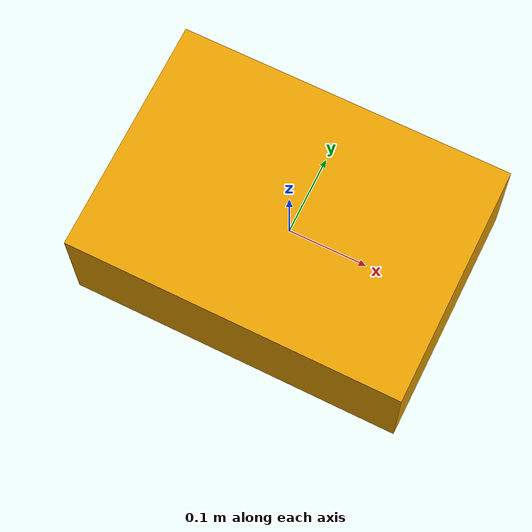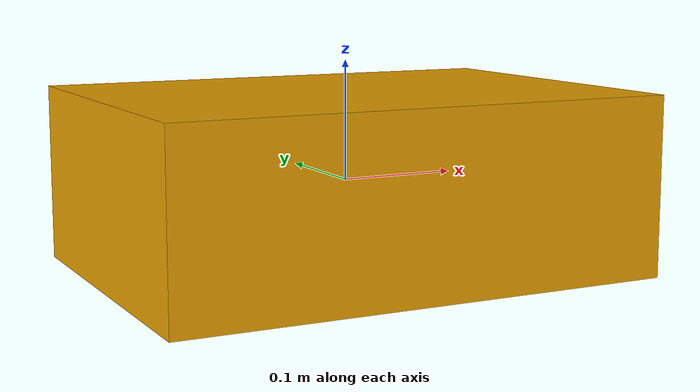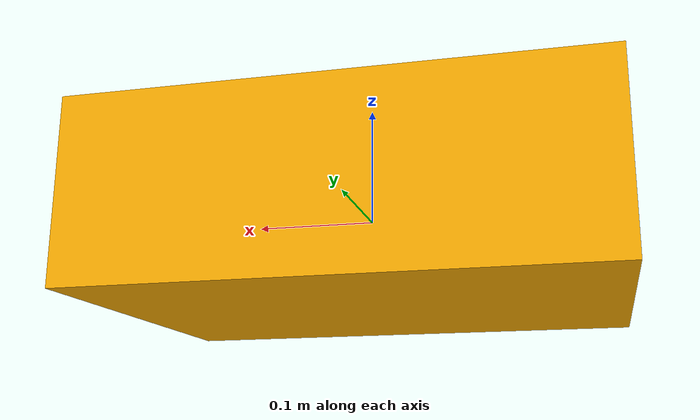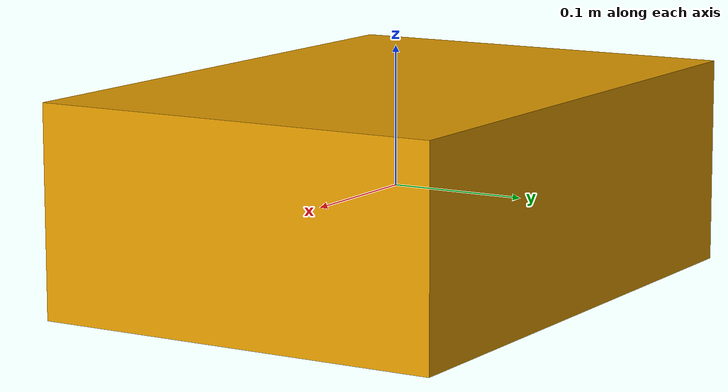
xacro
<?xml version="1.0"?>
<robot xmlns:xacro="http://www.ros.org/wiki/xacro" name="leo_rover_min">
  <link name="base_link">
    <inertial><mass value="6.5"/><origin xyz="0 0 0"/><inertia ixx="0.1" ixy="0" ixz="0" iyy="0.2" iyz="0" izz="0.3"/></inertial>
    <visual><geometry><box size="0.42 0.30 0.15"/></geometry></visual>
    <collision><geometry><box size="0.42 0.30 0.15"/></geometry></collision>
  </link>
  <link name="camera_link"/>
  <joint name="camera_joint" type="fixed">
    <origin xyz="0.15 0.0 0.18" rpy="0 0 0"/>
    <parent link="base_link"/>
    <child link="camera_link"/>
  </joint>
  <link name="camera_optical_frame"/>
  <joint name="camera_optical_joint" type="fixed">
    <origin xyz="0 0 0" rpy="-1.57079632679 0 -1.57079632679"/>
    <parent link="camera_link"/>
    <child link="camera_optical_frame"/>
  </joint>
  <link name="odom"/>
  <joint name="base_link_to_odom" type="fixed">
    <origin xyz="0 0 0" rpy="0 0 0"/>
    <parent link="odom"/>
    <child link="base_link"/>
  </joint>
  <link name="base_footprint"/>
  <joint name="base_link_to_footprint" type="fixed">
    <origin xyz="0 0 0" rpy="0 0 0"/>
    <parent link="base_link"/>
    <child link="base_footprint"/>
  </joint>
</robot>
